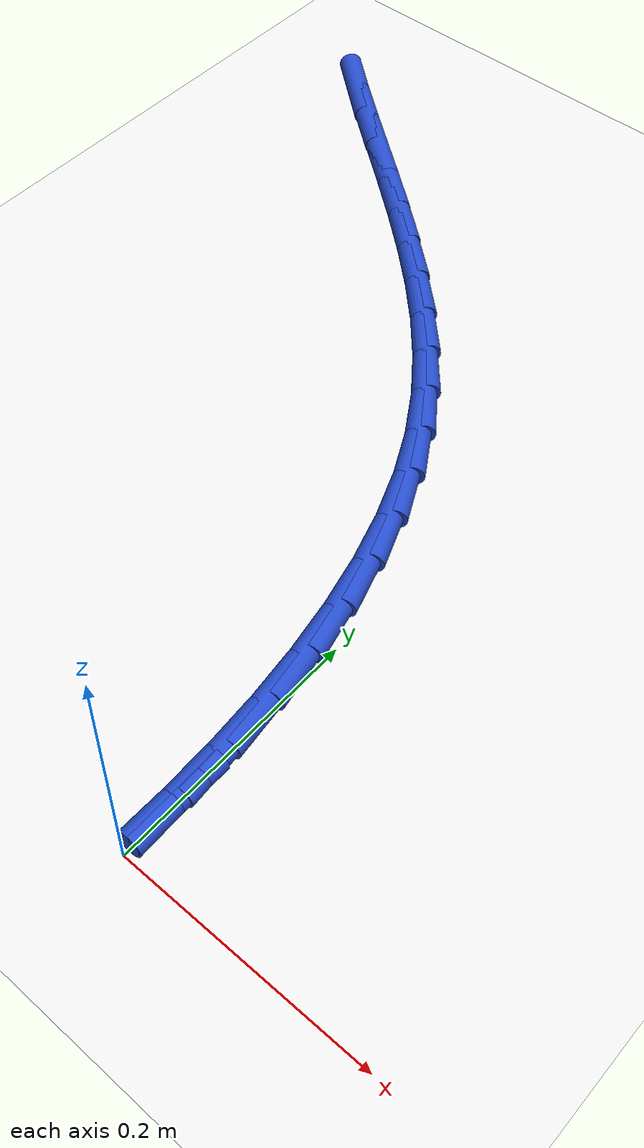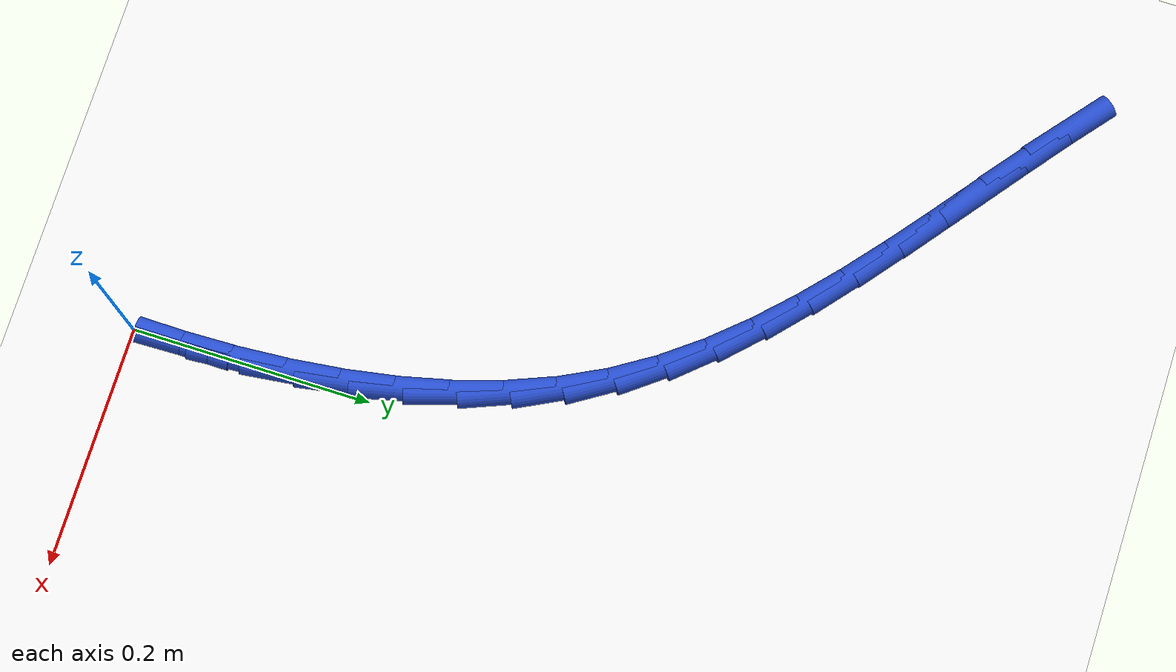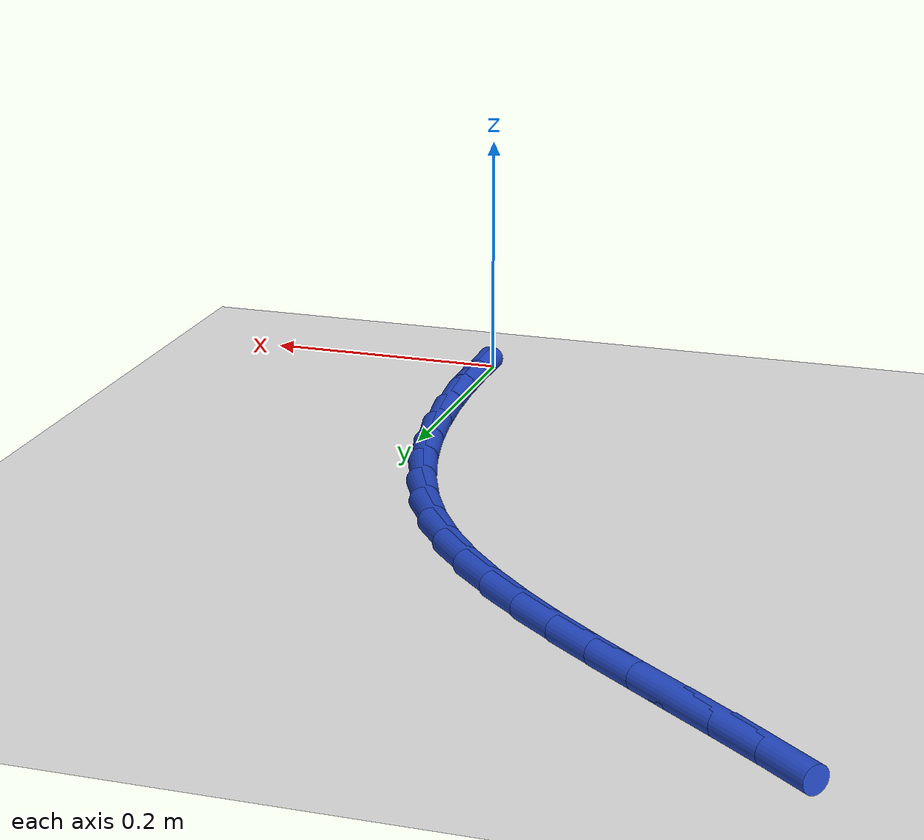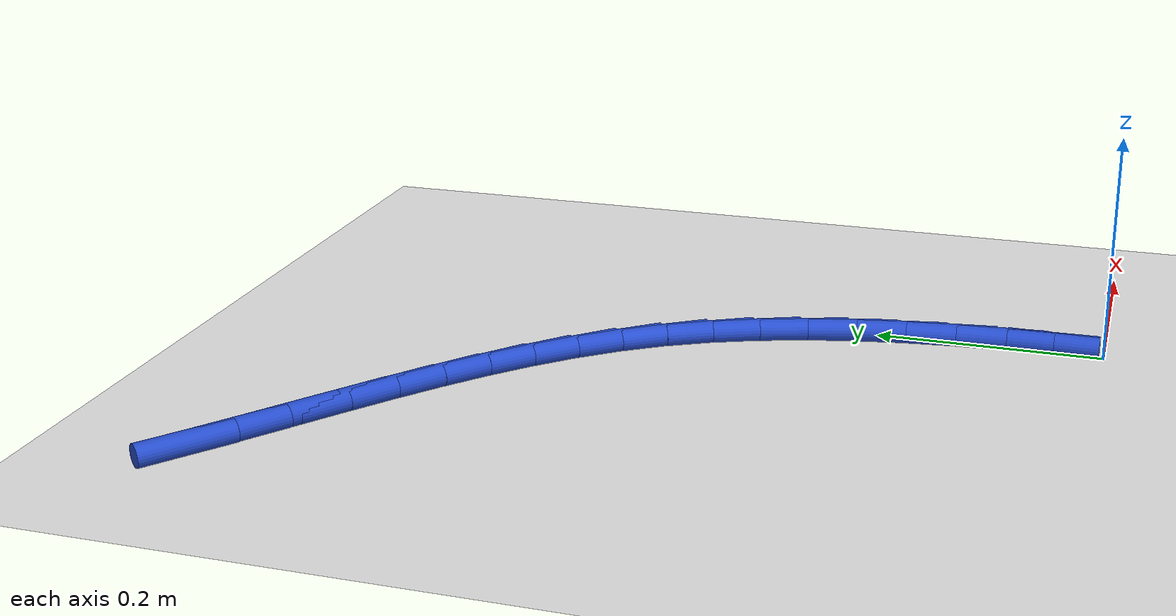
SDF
<sdf version="1.6">
 <world name="default">
  <model name="ground_plane">
   <static>1</static>
   <link name="link">
    <collision name="collision">
     <geometry><plane><normal>0 0 1</normal><size>100 100</size></plane></geometry>
     <surface><friction><ode><mu>100</mu><mu2>50</mu2></ode></friction></surface>
    </collision>
    <visual name="visual">
     <cast_shadows>0</cast_shadows>
     <geometry><plane><normal>0 0 1</normal><size>100 100</size></plane></geometry>
     <material>
      <script><uri>file://media/materials/scripts/gazebo.material</uri><name>Gazebo/WhiteGlow</name></script>
     </material>
    </visual>
   </link>
  </model>
  <model name="line">
   <link name="link_1">
    <pose>0.0004836907167628415 0.044294223645875125 0.01 0 1.57 -1.5435371216451328</pose>
    <collision name="collision">
     <geometry><cylinder><radius>0.01</radius><length>0.08</length></cylinder></geometry>
    </collision>
    <visual name="visual">
     <material>
      <script><name>Gazebo/Blue</name><uri>file://media/materials/scripts/gazebo.material</uri></script>
     </material>
     <geometry><cylinder><radius>0.01</radius><length>0.08</length></cylinder></geometry>
    </visual>
   </link>
   <link name="link_2">
    <pose>-0.0007289443741423879 0.08876854760715641 0.01 0 1.57 -1.5006337312821414</pose>
    <collision name="collision">
     <geometry><cylinder><radius>0.01</radius><length>0.08</length></cylinder></geometry>
    </collision>
    <visual name="visual">
     <material>
      <script><name>Gazebo/Blue</name><uri>file://media/materials/scripts/gazebo.material</uri></script>
     </material>
     <geometry><cylinder><radius>0.01</radius><length>0.08</length></cylinder></geometry>
    </visual>
   </link>
   <link name="link_3">
    <pose>-0.00384553250703105 0.133115144653902 0.01 0 1.57 -1.4522914731728134</pose>
    <collision name="collision">
     <geometry><cylinder><radius>0.01</radius><length>0.08</length></cylinder></geometry>
    </collision>
    <visual name="visual">
     <material>
      <script><name>Gazebo/Blue</name><uri>file://media/materials/scripts/gazebo.material</uri></script>
     </material>
     <geometry><cylinder><radius>0.01</radius><length>0.08</length></cylinder></geometry>
    </visual>
   </link>
   <link name="link_4">
    <pose>-0.00907370091621851 0.1770261875561697 0.01 0 1.57 -1.3977072143953841</pose>
    <collision name="collision">
     <geometry><cylinder><radius>0.01</radius><length>0.08</length></cylinder></geometry>
    </collision>
    <visual name="visual">
     <material>
      <script><name>Gazebo/Blue</name><uri>file://media/materials/scripts/gazebo.material</uri></script>
     </material>
     <geometry><cylinder><radius>0.01</radius><length>0.08</length></cylinder></geometry>
    </visual>
   </link>
   <link name="link_5">
    <pose>-0.016621076836020144 0.22019384908401765 0.01 0 1.57 -1.3360089207550203</pose>
    <collision name="collision">
     <geometry><cylinder><radius>0.01</radius><length>0.08</length></cylinder></geometry>
    </collision>
    <visual name="visual">
     <material>
      <script><name>Gazebo/Blue</name><uri>file://media/materials/scripts/gazebo.material</uri></script>
     </material>
     <geometry><cylinder><radius>0.01</radius><length>0.08</length></cylinder></geometry>
    </visual>
   </link>
   <link name="link_6">
    <pose>-0.026695287500751324 0.2623103020075036 0.01 0 1.57 -1.2663033365061571</pose>
    <collision name="collision">
     <geometry><cylinder><radius>0.01</radius><length>0.08</length></cylinder></geometry>
    </collision>
    <visual name="visual">
     <material>
      <script><name>Gazebo/Blue</name><uri>file://media/materials/scripts/gazebo.material</uri></script>
     </material>
     <geometry><cylinder><radius>0.01</radius><length>0.08</length></cylinder></geometry>
    </visual>
   </link>
   <link name="link_7">
    <pose>-0.039503960144727415 0.30306771909668556 0.01 0 1.57 -1.1877665340091048</pose>
    <collision name="collision">
     <geometry><cylinder><radius>0.01</radius><length>0.08</length></cylinder></geometry>
    </collision>
    <visual name="visual">
     <material>
      <script><name>Gazebo/Blue</name><uri>file://media/materials/scripts/gazebo.material</uri></script>
     </material>
     <geometry><cylinder><radius>0.01</radius><length>0.08</length></cylinder></geometry>
    </visual>
   </link>
   <link name="link_8">
    <pose>-0.05525472200226378 0.34215827312162156 0.01 0 1.57 -1.099792717606727</pose>
    <collision name="collision">
     <geometry><cylinder><radius>0.01</radius><length>0.08</length></cylinder></geometry>
    </collision>
    <visual name="visual">
     <material>
      <script><name>Gazebo/Blue</name><uri>file://media/materials/scripts/gazebo.material</uri></script>
     </material>
     <geometry><cylinder><radius>0.01</radius><length>0.08</length></cylinder></geometry>
    </visual>
   </link>
   <link name="link_9">
    <pose>-0.07415520030767579 0.37927413685236944 0.01 0 1.57 -1.0047245370595015</pose>
    <collision name="collision">
     <geometry><cylinder><radius>0.01</radius><length>0.08</length></cylinder></geometry>
    </collision>
    <visual name="visual">
     <material>
      <script><name>Gazebo/Blue</name><uri>file://media/materials/scripts/gazebo.material</uri></script>
     </material>
     <geometry><cylinder><radius>0.01</radius><length>0.08</length></cylinder></geometry>
    </visual>
   </link>
   <link name="link_10">
    <pose>-0.0963375335057452 0.4141827364127885 0.01 0 1.57 -0.9168224138754677</pose>
    <collision name="collision">
     <geometry><cylinder><radius>0.01</radius><length>0.08</length></cylinder></geometry>
    </collision>
    <visual name="visual">
     <material>
      <script><name>Gazebo/Blue</name><uri>file://media/materials/scripts/gazebo.material</uri></script>
     </material>
     <geometry><cylinder><radius>0.01</radius><length>0.08</length></cylinder></geometry>
    </visual>
   </link>
   <link name="link_11">
    <pose>-0.1215318323017977 0.4470522718151822 0.01 0 1.57 -0.8418158129822889</pose>
    <collision name="collision">
     <geometry><cylinder><radius>0.01</radius><length>0.08</length></cylinder></geometry>
    </collision>
    <visual name="visual">
     <material>
      <script><name>Gazebo/Blue</name><uri>file://media/materials/scripts/gazebo.material</uri></script>
     </material>
     <geometry><cylinder><radius>0.01</radius><length>0.08</length></cylinder></geometry>
    </visual>
   </link>
   <link name="link_12">
    <pose>-0.14933490482825906 0.47818382989840136 0.01 0 1.57 -0.7801420067670627</pose>
    <collision name="collision">
     <geometry><cylinder><radius>0.01</radius><length>0.08</length></cylinder></geometry>
    </collision>
    <visual name="visual">
     <material>
      <script><name>Gazebo/Blue</name><uri>file://media/materials/scripts/gazebo.material</uri></script>
     </material>
     <geometry><cylinder><radius>0.01</radius><length>0.08</length></cylinder></geometry>
    </visual>
   </link>
   <link name="link_13">
    <pose>-0.17934347213868584 0.5078785843085829 0.01 0 1.57 -0.7315879150065248</pose>
    <collision name="collision">
     <geometry><cylinder><radius>0.01</radius><length>0.08</length></cylinder></geometry>
    </collision>
    <visual name="visual">
     <material>
      <script><name>Gazebo/Blue</name><uri>file://media/materials/scripts/gazebo.material</uri></script>
     </material>
     <geometry><cylinder><radius>0.01</radius><length>0.08</length></cylinder></geometry>
    </visual>
   </link>
   <link name="link_14">
    <pose>-0.21115425528663528 0.5364377086918644 0.01 0 1.57 -0.6956244081678113</pose>
    <collision name="collision">
     <geometry><cylinder><radius>0.01</radius><length>0.08</length></cylinder></geometry>
    </collision>
    <visual name="visual">
     <material>
      <script><name>Gazebo/Blue</name><uri>file://media/materials/scripts/gazebo.material</uri></script>
     </material>
     <geometry><cylinder><radius>0.01</radius><length>0.08</length></cylinder></geometry>
    </visual>
   </link>
   <link name="link_15">
    <pose>-0.24436397532566392 0.5641623766943822 0.01 0 1.57 -0.6716508556180303</pose>
    <collision name="collision">
     <geometry><cylinder><radius>0.01</radius><length>0.08</length></cylinder></geometry>
    </collision>
    <visual name="visual">
     <material>
      <script><name>Gazebo/Blue</name><uri>file://media/materials/scripts/gazebo.material</uri></script>
     </material>
     <geometry><cylinder><radius>0.01</radius><length>0.08</length></cylinder></geometry>
    </visual>
   </link>
   <link name="link_16">
    <pose>-0.27856935330932875 0.5913537619622738 0.01 0 1.57 -0.6591487235943367</pose>
    <collision name="collision">
     <geometry><cylinder><radius>0.01</radius><length>0.08</length></cylinder></geometry>
    </collision>
    <visual name="visual">
     <material>
      <script><name>Gazebo/Blue</name><uri>file://media/materials/scripts/gazebo.material</uri></script>
     </material>
     <geometry><cylinder><radius>0.01</radius><length>0.08</length></cylinder></geometry>
    </visual>
   </link>
   <link name="link_17">
    <pose>-0.31336711029118663 0.6183130381416758 0.01 0 1.57 -0.6577640735591304</pose>
    <collision name="collision">
     <geometry><cylinder><radius>0.01</radius><length>0.08</length></cylinder></geometry>
    </collision>
    <visual name="visual">
     <material>
      <script><name>Gazebo/Blue</name><uri>file://media/materials/scripts/gazebo.material</uri></script>
     </material>
     <geometry><cylinder><radius>0.01</radius><length>0.08</length></cylinder></geometry>
    </visual>
   </link>
   <link name="link_18">
    <pose>-0.3483539673247943 0.6453413788787257 0.01 0 1.57 -0.6673402630239551</pose>
    <collision name="collision">
     <geometry><cylinder><radius>0.01</radius><length>0.08</length></cylinder></geometry>
    </collision>
    <visual name="visual">
     <material>
      <script><name>Gazebo/Blue</name><uri>file://media/materials/scripts/gazebo.material</uri></script>
     </material>
     <geometry><cylinder><radius>0.01</radius><length>0.08</length></cylinder></geometry>
    </visual>
   </link>
   <link name="link_19">
    <pose>-0.38312664546370867 0.6727399578195599 0.01 0 1.57 -0.687914505725469</pose>
    <collision name="collision">
     <geometry><cylinder><radius>0.01</radius><length>0.08</length></cylinder></geometry>
    </collision>
    <visual name="visual">
     <material>
      <script><name>Gazebo/Blue</name><uri>file://media/materials/scripts/gazebo.material</uri></script>
     </material>
     <geometry><cylinder><radius>0.01</radius><length>0.08</length></cylinder></geometry>
    </visual>
   </link>
   <link name="link_161">
    <pose>0.0005223707497017723 0.044347871999193246 0.01 0 1.57 1.5590179354160392</pose>
    <collision name="collision">
     <geometry><cylinder><radius>0.01</radius><length>0.08</length></cylinder></geometry>
    </collision>
    <visual name="visual">
     <material>
      <script><name>Gazebo/Blue</name><uri>file://media/materials/scripts/gazebo.material</uri></script>
     </material>
     <geometry><cylinder><radius>0.01</radius><length>0.08</length></cylinder></geometry>
    </visual>
   </link>
  </model>
 </world>
</sdf>
